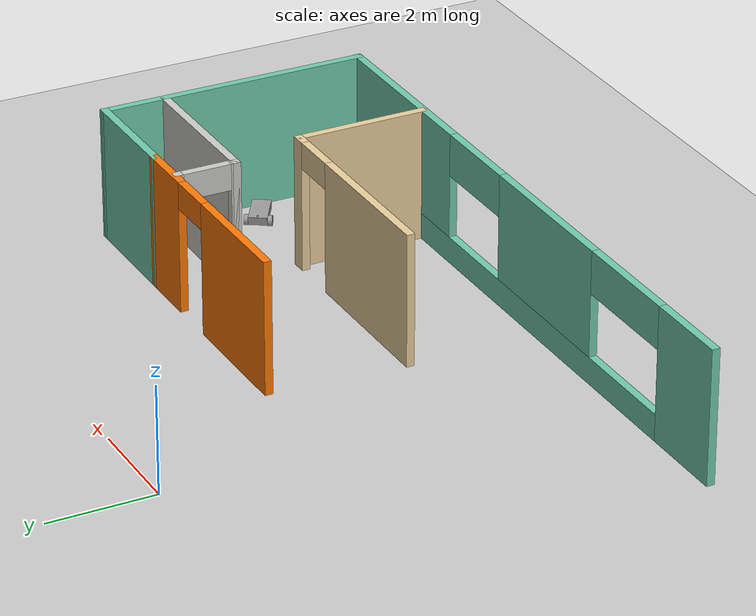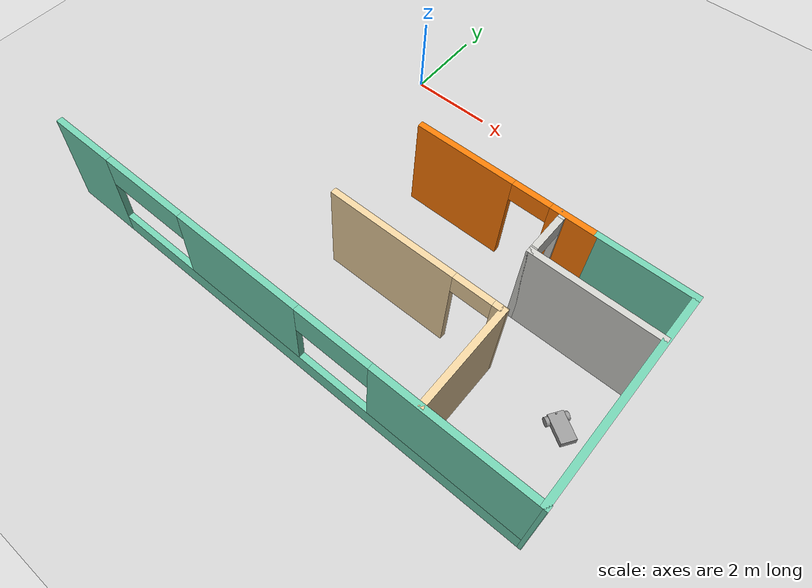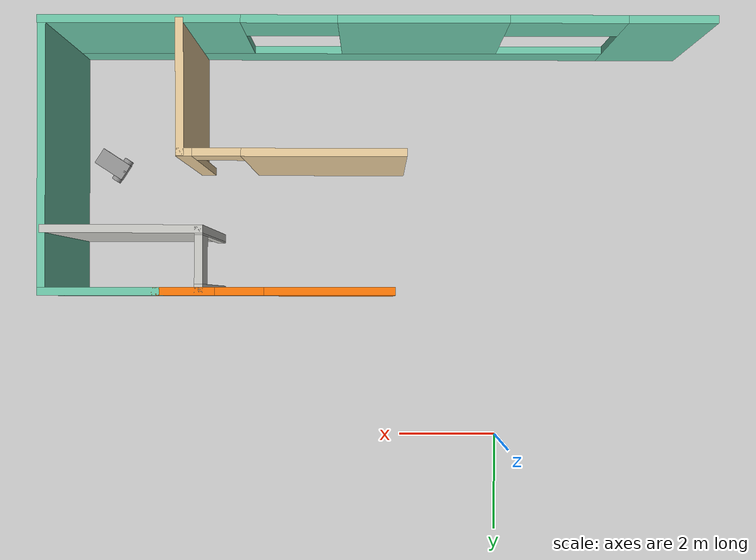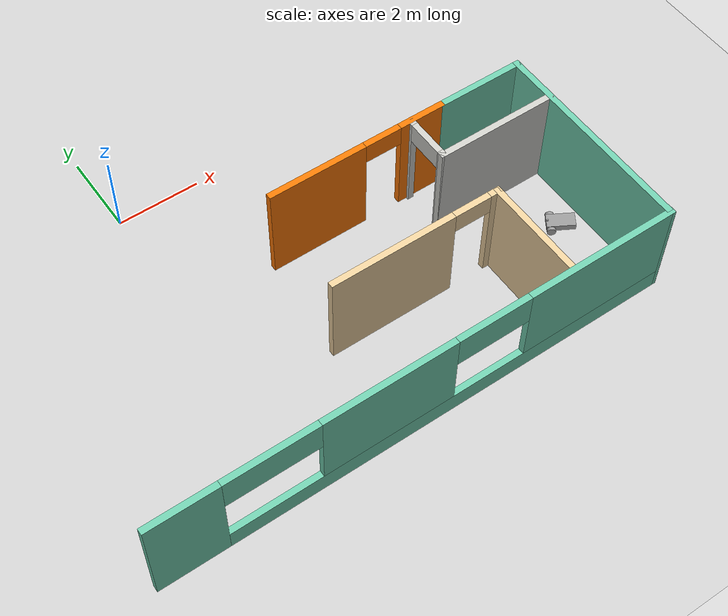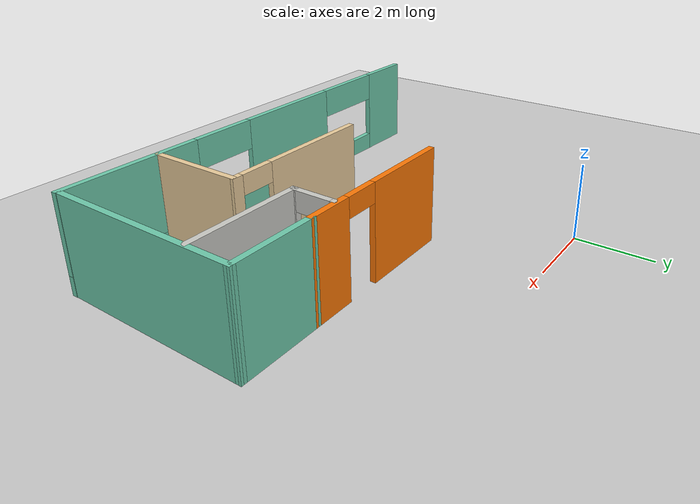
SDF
<sdf version="1.6">
 <world name="default">
  <model name="ground_plane">
   <static>1</static>
   <link name="link">
    <collision name="collision">
     <geometry><plane><normal>0 0 1</normal><size>100 100</size></plane></geometry>
     <surface><friction><ode><mu>100</mu><mu2>50</mu2></ode></friction></surface>
    </collision>
    <visual name="visual">
     <cast_shadows>0</cast_shadows>
     <geometry><plane><normal>0 0 1</normal><size>100 100</size></plane></geometry>
     <material>
      <script><uri>file://media/materials/scripts/gazebo.material</uri><name>Gazebo/Grey</name></script>
     </material>
    </visual>
   </link>
  </model>
  <model name="Building">
   <link name="Wall_10">
    <pose>6.19158 -2.73169 0 0 -0 3.14159</pose>
    <visual name="Wall_10_Visual">
     <pose>0 0 1.25 0 -0 0</pose>
     <geometry><box><size>2.25 0.15 2.5</size></box></geometry>
     <material>
      <script><uri>file://media/materials/scripts/gazebo.material</uri><name>Gazebo/Grey</name></script>
      <ambient>0.435294 0.796078 0.67451 1</ambient>
      <shader type="pixel"/>
      <diffuse>0.7 0.7 0.7 1</diffuse>
      <specular>0.01 0.01 0.01 1</specular>
      <emissive>0 0 0 1</emissive>
     </material>
     <meta><layer>0</layer></meta>
    </visual>
    <collision name="Wall_10_Collision">
     <pose>0 0 1.25 0 -0 0</pose>
     <geometry><box><size>2.25 0.15 2.5</size></box></geometry>
     <surface>
      <friction>
       <ode><mu>1</mu><mu2>1</mu2><fdir1>0 0 0</fdir1><slip1>0</slip1><slip2>0</slip2></ode>
       <torsional>
        <coefficient>1</coefficient>
        <patch_radius>0</patch_radius>
        <surface_radius>0</surface_radius>
        <use_patch_radius>1</use_patch_radius>
        <ode><slip>0</slip></ode>
       </torsional>
      </friction>
      <bounce><restitution_coefficient>0</restitution_coefficient><threshold>1e+06</threshold></bounce>
      <contact>
       <collide_without_contact>0</collide_without_contact>
       <collide_without_contact_bitmask>1</collide_without_contact_bitmask>
       <collide_bitmask>1</collide_bitmask>
       <ode>
        <soft_cfm>0</soft_cfm>
        <soft_erp>0.2</soft_erp>
        <kp>1e+13</kp>
        <kd>1</kd>
        <max_vel>0.01</max_vel>
        <min_depth>0</min_depth>
       </ode>
       <bullet>
        <split_impulse>1</split_impulse>
        <split_impulse_penetration_threshold>-0.01</split_impulse_penetration_threshold>
        <soft_cfm>0</soft_cfm>
        <soft_erp>0.2</soft_erp>
        <kp>1e+13</kp>
        <kd>1</kd>
       </bullet>
      </contact>
     </surface>
    </collision>
   </link>
   <link name="Wall_253">
    <pose>2.97544 -2.73481 0 0 -0 0.00144</pose>
    <visual name="Wall_253_Visual_0">
     <pose>-1.03152 0 1.25 0 -0 0</pose>
     <geometry><box><size>2.41923 0.15 2.5</size></box></geometry>
     <material>
      <script><uri>file://media/materials/scripts/gazebo.material</uri><name>Gazebo/Grey</name></script>
      <ambient>0.996078 0.47451 0.0196078 1</ambient>
      <shader type="pixel"/>
      <diffuse>0.7 0.7 0.7 1</diffuse>
      <specular>0.01 0.01 0.01 1</specular>
      <emissive>0 0 0 1</emissive>
     </material>
     <meta><layer>0</layer></meta>
    </visual>
    <visual name="Wall_253_Visual_1">
     <pose>1.65962 0 1.25 0 -0 0</pose>
     <geometry><box><size>1.16304 0.15 2.5</size></box></geometry>
     <material>
      <script><uri>file://media/materials/scripts/gazebo.material</uri><name>Gazebo/Grey</name></script>
      <ambient>0.996078 0.47451 0.0196078 1</ambient>
      <shader type="pixel"/>
      <diffuse>0.7 0.7 0.7 1</diffuse>
      <specular>0.01 0.01 0.01 1</specular>
      <emissive>0 0 0 1</emissive>
     </material>
     <meta><layer>0</layer></meta>
    </visual>
    <visual name="Wall_253_Visual_2">
     <pose>0.628096 0 2.25 0 -0 0</pose>
     <geometry><box><size>0.9 0.15 0.5</size></box></geometry>
     <material>
      <script><uri>file://media/materials/scripts/gazebo.material</uri><name>Gazebo/Grey</name></script>
      <ambient>0.996078 0.47451 0.0196078 1</ambient>
      <shader type="pixel"/>
      <diffuse>0.7 0.7 0.7 1</diffuse>
      <specular>0.01 0.01 0.01 1</specular>
      <emissive>0 0 0 1</emissive>
     </material>
     <meta><layer>0</layer></meta>
    </visual>
    <collision name="Wall_253_Collision_0">
     <pose>-1.03152 0 1.25 0 -0 0</pose>
     <geometry><box><size>2.41923 0.15 2.5</size></box></geometry>
     <surface>
      <friction>
       <ode><mu>1</mu><mu2>1</mu2><fdir1>0 0 0</fdir1><slip1>0</slip1><slip2>0</slip2></ode>
       <torsional>
        <coefficient>1</coefficient>
        <patch_radius>0</patch_radius>
        <surface_radius>0</surface_radius>
        <use_patch_radius>1</use_patch_radius>
        <ode><slip>0</slip></ode>
       </torsional>
      </friction>
      <bounce><restitution_coefficient>0</restitution_coefficient><threshold>1e+06</threshold></bounce>
      <contact>
       <collide_without_contact>0</collide_without_contact>
       <collide_without_contact_bitmask>1</collide_without_contact_bitmask>
       <collide_bitmask>1</collide_bitmask>
       <ode>
        <soft_cfm>0</soft_cfm>
        <soft_erp>0.2</soft_erp>
        <kp>1e+13</kp>
        <kd>1</kd>
        <max_vel>0.01</max_vel>
        <min_depth>0</min_depth>
       </ode>
       <bullet>
        <split_impulse>1</split_impulse>
        <split_impulse_penetration_threshold>-0.01</split_impulse_penetration_threshold>
        <soft_cfm>0</soft_cfm>
        <soft_erp>0.2</soft_erp>
        <kp>1e+13</kp>
        <kd>1</kd>
       </bullet>
      </contact>
     </surface>
    </collision>
    <collision name="Wall_253_Collision_1">
     <pose>1.65962 0 1.25 0 -0 0</pose>
     <geometry><box><size>1.16304 0.15 2.5</size></box></geometry>
     <surface>
      <friction>
       <ode><mu>1</mu><mu2>1</mu2><fdir1>0 0 0</fdir1><slip1>0</slip1><slip2>0</slip2></ode>
       <torsional>
        <coefficient>1</coefficient>
        <patch_radius>0</patch_radius>
        <surface_radius>0</surface_radius>
        <use_patch_radius>1</use_patch_radius>
        <ode><slip>0</slip></ode>
       </torsional>
      </friction>
      <bounce><restitution_coefficient>0</restitution_coefficient><threshold>1e+06</threshold></bounce>
      <contact>
       <collide_without_contact>0</collide_without_contact>
       <collide_without_contact_bitmask>1</collide_without_contact_bitmask>
       <collide_bitmask>1</collide_bitmask>
       <ode>
        <soft_cfm>0</soft_cfm>
        <soft_erp>0.2</soft_erp>
        <kp>1e+13</kp>
        <kd>1</kd>
        <max_vel>0.01</max_vel>
        <min_depth>0</min_depth>
       </ode>
       <bullet>
        <split_impulse>1</split_impulse>
        <split_impulse_penetration_threshold>-0.01</split_impulse_penetration_threshold>
        <soft_cfm>0</soft_cfm>
        <soft_erp>0.2</soft_erp>
        <kp>1e+13</kp>
        <kd>1</kd>
       </bullet>
      </contact>
     </surface>
    </collision>
    <collision name="Wall_253_Collision_2">
     <pose>0.628096 0 2.25 0 -0 0</pose>
     <geometry><box><size>0.9 0.15 0.5</size></box></geometry>
     <surface>
      <friction>
       <ode><mu>1</mu><mu2>1</mu2><fdir1>0 0 0</fdir1><slip1>0</slip1><slip2>0</slip2></ode>
       <torsional>
        <coefficient>1</coefficient>
        <patch_radius>0</patch_radius>
        <surface_radius>0</surface_radius>
        <use_patch_radius>1</use_patch_radius>
        <ode><slip>0</slip></ode>
       </torsional>
      </friction>
      <bounce><restitution_coefficient>0</restitution_coefficient><threshold>1e+06</threshold></bounce>
      <contact>
       <collide_without_contact>0</collide_without_contact>
       <collide_without_contact_bitmask>1</collide_without_contact_bitmask>
       <collide_bitmask>1</collide_bitmask>
       <ode>
        <soft_cfm>0</soft_cfm>
        <soft_erp>0.2</soft_erp>
        <kp>1e+13</kp>
        <kd>1</kd>
        <max_vel>0.01</max_vel>
        <min_depth>0</min_depth>
       </ode>
       <bullet>
        <split_impulse>1</split_impulse>
        <split_impulse_penetration_threshold>-0.01</split_impulse_penetration_threshold>
        <soft_cfm>0</soft_cfm>
        <soft_erp>0.2</soft_erp>
        <kp>1e+13</kp>
        <kd>1</kd>
       </bullet>
      </contact>
     </surface>
    </collision>
   </link>
   <link name="Wall_276">
    <pose>2.65197 -5.28598 0 0 -0 0</pose>
    <visual name="Wall_276_Visual_0">
     <pose>-0.59905 0 1.25 0 -0 0</pose>
     <geometry><box><size>3.0519 0.15 2.5</size></box></geometry>
     <material>
      <script><uri>file://media/materials/scripts/gazebo.material</uri><name>Gazebo/Grey</name></script>
      <ambient>0.921569 0.807843 0.615686 1</ambient>
      <shader type="pixel"/>
      <diffuse>0.7 0.7 0.7 1</diffuse>
      <specular>0.01 0.01 0.01 1</specular>
      <emissive>0 0 0 1</emissive>
     </material>
     <meta><layer>0</layer></meta>
    </visual>
    <visual name="Wall_276_Visual_1">
     <pose>1.97595 0 1.25 0 -0 0</pose>
     <geometry><box><size>0.298099 0.15 2.5</size></box></geometry>
     <material>
      <script><uri>file://media/materials/scripts/gazebo.material</uri><name>Gazebo/Grey</name></script>
      <ambient>0.921569 0.807843 0.615686 1</ambient>
      <shader type="pixel"/>
      <diffuse>0.7 0.7 0.7 1</diffuse>
      <specular>0.01 0.01 0.01 1</specular>
      <emissive>0 0 0 1</emissive>
     </material>
     <meta><layer>0</layer></meta>
    </visual>
    <visual name="Wall_276_Visual_2">
     <pose>1.3769 0 2.25 0 -0 0</pose>
     <geometry><box><size>0.9 0.15 0.5</size></box></geometry>
     <material>
      <script><uri>file://media/materials/scripts/gazebo.material</uri><name>Gazebo/Grey</name></script>
      <ambient>0.921569 0.807843 0.615686 1</ambient>
      <shader type="pixel"/>
      <diffuse>0.7 0.7 0.7 1</diffuse>
      <specular>0.01 0.01 0.01 1</specular>
      <emissive>0 0 0 1</emissive>
     </material>
     <meta><layer>0</layer></meta>
    </visual>
    <collision name="Wall_276_Collision_0">
     <pose>-0.59905 0 1.25 0 -0 0</pose>
     <geometry><box><size>3.0519 0.15 2.5</size></box></geometry>
     <surface>
      <friction>
       <ode><mu>1</mu><mu2>1</mu2><fdir1>0 0 0</fdir1><slip1>0</slip1><slip2>0</slip2></ode>
       <torsional>
        <coefficient>1</coefficient>
        <patch_radius>0</patch_radius>
        <surface_radius>0</surface_radius>
        <use_patch_radius>1</use_patch_radius>
        <ode><slip>0</slip></ode>
       </torsional>
      </friction>
      <bounce><restitution_coefficient>0</restitution_coefficient><threshold>1e+06</threshold></bounce>
      <contact>
       <collide_without_contact>0</collide_without_contact>
       <collide_without_contact_bitmask>1</collide_without_contact_bitmask>
       <collide_bitmask>1</collide_bitmask>
       <ode>
        <soft_cfm>0</soft_cfm>
        <soft_erp>0.2</soft_erp>
        <kp>1e+13</kp>
        <kd>1</kd>
        <max_vel>0.01</max_vel>
        <min_depth>0</min_depth>
       </ode>
       <bullet>
        <split_impulse>1</split_impulse>
        <split_impulse_penetration_threshold>-0.01</split_impulse_penetration_threshold>
        <soft_cfm>0</soft_cfm>
        <soft_erp>0.2</soft_erp>
        <kp>1e+13</kp>
        <kd>1</kd>
       </bullet>
      </contact>
     </surface>
    </collision>
    <collision name="Wall_276_Collision_1">
     <pose>1.97595 0 1.25 0 -0 0</pose>
     <geometry><box><size>0.298099 0.15 2.5</size></box></geometry>
     <surface>
      <friction>
       <ode><mu>1</mu><mu2>1</mu2><fdir1>0 0 0</fdir1><slip1>0</slip1><slip2>0</slip2></ode>
       <torsional>
        <coefficient>1</coefficient>
        <patch_radius>0</patch_radius>
        <surface_radius>0</surface_radius>
        <use_patch_radius>1</use_patch_radius>
        <ode><slip>0</slip></ode>
       </torsional>
      </friction>
      <bounce><restitution_coefficient>0</restitution_coefficient><threshold>1e+06</threshold></bounce>
      <contact>
       <collide_without_contact>0</collide_without_contact>
       <collide_without_contact_bitmask>1</collide_without_contact_bitmask>
       <collide_bitmask>1</collide_bitmask>
       <ode>
        <soft_cfm>0</soft_cfm>
        <soft_erp>0.2</soft_erp>
        <kp>1e+13</kp>
        <kd>1</kd>
        <max_vel>0.01</max_vel>
        <min_depth>0</min_depth>
       </ode>
       <bullet>
        <split_impulse>1</split_impulse>
        <split_impulse_penetration_threshold>-0.01</split_impulse_penetration_threshold>
        <soft_cfm>0</soft_cfm>
        <soft_erp>0.2</soft_erp>
        <kp>1e+13</kp>
        <kd>1</kd>
       </bullet>
      </contact>
     </surface>
    </collision>
    <collision name="Wall_276_Collision_2">
     <pose>1.3769 0 2.25 0 -0 0</pose>
     <geometry><box><size>0.9 0.15 0.5</size></box></geometry>
     <surface>
      <friction>
       <ode><mu>1</mu><mu2>1</mu2><fdir1>0 0 0</fdir1><slip1>0</slip1><slip2>0</slip2></ode>
       <torsional>
        <coefficient>1</coefficient>
        <patch_radius>0</patch_radius>
        <surface_radius>0</surface_radius>
        <use_patch_radius>1</use_patch_radius>
        <ode><slip>0</slip></ode>
       </torsional>
      </friction>
      <bounce><restitution_coefficient>0</restitution_coefficient><threshold>1e+06</threshold></bounce>
      <contact>
       <collide_without_contact>0</collide_without_contact>
       <collide_without_contact_bitmask>1</collide_without_contact_bitmask>
       <collide_bitmask>1</collide_bitmask>
       <ode>
        <soft_cfm>0</soft_cfm>
        <soft_erp>0.2</soft_erp>
        <kp>1e+13</kp>
        <kd>1</kd>
        <max_vel>0.01</max_vel>
        <min_depth>0</min_depth>
       </ode>
       <bullet>
        <split_impulse>1</split_impulse>
        <split_impulse_penetration_threshold>-0.01</split_impulse_penetration_threshold>
        <soft_cfm>0</soft_cfm>
        <soft_erp>0.2</soft_erp>
        <kp>1e+13</kp>
        <kd>1</kd>
       </bullet>
      </contact>
     </surface>
    </collision>
   </link>
   <link name="Wall_277">
    <pose>4.70728 -6.49036 0 0 0 -1.56635</pose>
    <visual name="Wall_277_Visual">
     <pose>0 0 1.25 0 -0 0</pose>
     <geometry><box><size>2.53755 0.15 2.5</size></box></geometry>
     <material>
      <script><uri>file://media/materials/scripts/gazebo.material</uri><name>Gazebo/Grey</name></script>
      <ambient>0.921569 0.807843 0.615686 1</ambient>
      <shader type="pixel"/>
      <diffuse>0.7 0.7 0.7 1</diffuse>
      <specular>0.01 0.01 0.01 1</specular>
      <emissive>0 0 0 1</emissive>
     </material>
     <meta><layer>0</layer></meta>
    </visual>
    <collision name="Wall_277_Collision">
     <pose>0 0 1.25 0 -0 0</pose>
     <geometry><box><size>2.53755 0.15 2.5</size></box></geometry>
     <surface>
      <friction>
       <ode><mu>1</mu><mu2>1</mu2><fdir1>0 0 0</fdir1><slip1>0</slip1><slip2>0</slip2></ode>
       <torsional>
        <coefficient>1</coefficient>
        <patch_radius>0</patch_radius>
        <surface_radius>0</surface_radius>
        <use_patch_radius>1</use_patch_radius>
        <ode><slip>0</slip></ode>
       </torsional>
      </friction>
      <bounce><restitution_coefficient>0</restitution_coefficient><threshold>1e+06</threshold></bounce>
      <contact>
       <collide_without_contact>0</collide_without_contact>
       <collide_without_contact_bitmask>1</collide_without_contact_bitmask>
       <collide_bitmask>1</collide_bitmask>
       <ode>
        <soft_cfm>0</soft_cfm>
        <soft_erp>0.2</soft_erp>
        <kp>1e+13</kp>
        <kd>1</kd>
        <max_vel>0.01</max_vel>
        <min_depth>0</min_depth>
       </ode>
       <bullet>
        <split_impulse>1</split_impulse>
        <split_impulse_penetration_threshold>-0.01</split_impulse_penetration_threshold>
        <soft_cfm>0</soft_cfm>
        <soft_erp>0.2</soft_erp>
        <kp>1e+13</kp>
        <kd>1</kd>
       </bullet>
      </contact>
     </surface>
    </collision>
   </link>
   <link name="Wall_280">
    <pose>5.77925 -3.8816 0 0 -0 0</pose>
    <visual name="Wall_280_Visual">
     <pose>0 0 1.25 0 -0 0</pose>
     <geometry><box><size>3 0.15 2.5</size></box></geometry>
     <material>
      <script><uri>file://media/materials/scripts/gazebo.material</uri><name>Gazebo/CeilingTiled</name></script>
      <ambient>0.921569 0.807843 0.615686 1</ambient>
      <shader type="pixel"/>
      <diffuse>1 1 1 1</diffuse>
      <specular>0 0 0 1</specular>
      <emissive>0 0 0 1</emissive>
     </material>
     <meta><layer>0</layer></meta>
    </visual>
    <collision name="Wall_280_Collision">
     <pose>0 0 1.25 0 -0 0</pose>
     <geometry><box><size>3 0.15 2.5</size></box></geometry>
     <surface>
      <friction>
       <ode><mu>1</mu><mu2>1</mu2><fdir1>0 0 0</fdir1><slip1>0</slip1><slip2>0</slip2></ode>
       <torsional>
        <coefficient>1</coefficient>
        <patch_radius>0</patch_radius>
        <surface_radius>0</surface_radius>
        <use_patch_radius>1</use_patch_radius>
        <ode><slip>0</slip></ode>
       </torsional>
      </friction>
      <bounce><restitution_coefficient>0</restitution_coefficient><threshold>1e+06</threshold></bounce>
      <contact>
       <collide_without_contact>0</collide_without_contact>
       <collide_without_contact_bitmask>1</collide_without_contact_bitmask>
       <collide_bitmask>1</collide_bitmask>
       <ode>
        <soft_cfm>0</soft_cfm>
        <soft_erp>0.2</soft_erp>
        <kp>1e+13</kp>
        <kd>1</kd>
        <max_vel>0.01</max_vel>
        <min_depth>0</min_depth>
       </ode>
       <bullet>
        <split_impulse>1</split_impulse>
        <split_impulse_penetration_threshold>-0.01</split_impulse_penetration_threshold>
        <soft_cfm>0</soft_cfm>
        <soft_erp>0.2</soft_erp>
        <kp>1e+13</kp>
        <kd>1</kd>
       </bullet>
      </contact>
     </surface>
    </collision>
   </link>
   <link name="Wall_343">
    <pose>4.35425 -3.3316 0 0 -0 1.5708</pose>
    <visual name="Wall_343_Visual_0">
     <pose>-0.532668 0 1.25 0 -0 0</pose>
     <geometry><box><size>0.184664 0.15 2.5</size></box></geometry>
     <material>
      <script><uri>file://media/materials/scripts/gazebo.material</uri><name>Gazebo/CeilingTiled</name></script>
      <ambient>0.921569 0.807843 0.615686 1</ambient>
      <shader type="pixel"/>
      <diffuse>1 1 1 1</diffuse>
      <specular>0 0 0 1</specular>
      <emissive>0 0 0 1</emissive>
     </material>
     <meta><layer>0</layer></meta>
    </visual>
    <visual name="Wall_343_Visual_1">
     <pose>0.542332 0 1.25 0 -0 0</pose>
     <geometry><box><size>0.165336 0.15 2.5</size></box></geometry>
     <material>
      <script><uri>file://media/materials/scripts/gazebo.material</uri><name>Gazebo/CeilingTiled</name></script>
      <ambient>0.921569 0.807843 0.615686 1</ambient>
      <shader type="pixel"/>
      <diffuse>1 1 1 1</diffuse>
      <specular>0 0 0 1</specular>
      <emissive>0 0 0 1</emissive>
     </material>
     <meta><layer>0</layer></meta>
    </visual>
    <visual name="Wall_343_Visual_2">
     <pose>0.009664 0 2.25 0 -0 0</pose>
     <geometry><box><size>0.9 0.15 0.5</size></box></geometry>
     <material>
      <script><uri>file://media/materials/scripts/gazebo.material</uri><name>Gazebo/CeilingTiled</name></script>
      <ambient>0.921569 0.807843 0.615686 1</ambient>
      <shader type="pixel"/>
      <diffuse>1 1 1 1</diffuse>
      <specular>0 0 0 1</specular>
      <emissive>0 0 0 1</emissive>
     </material>
     <meta><layer>0</layer></meta>
    </visual>
    <collision name="Wall_343_Collision_0">
     <pose>-0.532668 0 1.25 0 -0 0</pose>
     <geometry><box><size>0.184664 0.15 2.5</size></box></geometry>
     <surface>
      <friction>
       <ode><mu>1</mu><mu2>1</mu2><fdir1>0 0 0</fdir1><slip1>0</slip1><slip2>0</slip2></ode>
       <torsional>
        <coefficient>1</coefficient>
        <patch_radius>0</patch_radius>
        <surface_radius>0</surface_radius>
        <use_patch_radius>1</use_patch_radius>
        <ode><slip>0</slip></ode>
       </torsional>
      </friction>
      <bounce><restitution_coefficient>0</restitution_coefficient><threshold>1e+06</threshold></bounce>
      <contact>
       <collide_without_contact>0</collide_without_contact>
       <collide_without_contact_bitmask>1</collide_without_contact_bitmask>
       <collide_bitmask>1</collide_bitmask>
       <ode>
        <soft_cfm>0</soft_cfm>
        <soft_erp>0.2</soft_erp>
        <kp>1e+13</kp>
        <kd>1</kd>
        <max_vel>0.01</max_vel>
        <min_depth>0</min_depth>
       </ode>
       <bullet>
        <split_impulse>1</split_impulse>
        <split_impulse_penetration_threshold>-0.01</split_impulse_penetration_threshold>
        <soft_cfm>0</soft_cfm>
        <soft_erp>0.2</soft_erp>
        <kp>1e+13</kp>
        <kd>1</kd>
       </bullet>
      </contact>
     </surface>
    </collision>
    <collision name="Wall_343_Collision_1">
     <pose>0.542332 0 1.25 0 -0 0</pose>
     <geometry><box><size>0.165336 0.15 2.5</size></box></geometry>
     <surface>
      <friction>
       <ode><mu>1</mu><mu2>1</mu2><fdir1>0 0 0</fdir1><slip1>0</slip1><slip2>0</slip2></ode>
       <torsional>
        <coefficient>1</coefficient>
        <patch_radius>0</patch_radius>
        <surface_radius>0</surface_radius>
        <use_patch_radius>1</use_patch_radius>
        <ode><slip>0</slip></ode>
       </torsional>
      </friction>
      <bounce><restitution_coefficient>0</restitution_coefficient><threshold>1e+06</threshold></bounce>
      <contact>
       <collide_without_contact>0</collide_without_contact>
       <collide_without_contact_bitmask>1</collide_without_contact_bitmask>
       <collide_bitmask>1</collide_bitmask>
       <ode>
        <soft_cfm>0</soft_cfm>
        <soft_erp>0.2</soft_erp>
        <kp>1e+13</kp>
        <kd>1</kd>
        <max_vel>0.01</max_vel>
        <min_depth>0</min_depth>
       </ode>
       <bullet>
        <split_impulse>1</split_impulse>
        <split_impulse_penetration_threshold>-0.01</split_impulse_penetration_threshold>
        <soft_cfm>0</soft_cfm>
        <soft_erp>0.2</soft_erp>
        <kp>1e+13</kp>
        <kd>1</kd>
       </bullet>
      </contact>
     </surface>
    </collision>
    <collision name="Wall_343_Collision_2">
     <pose>0.009664 0 2.25 0 -0 0</pose>
     <geometry><box><size>0.9 0.15 0.5</size></box></geometry>
     <surface>
      <friction>
       <ode><mu>1</mu><mu2>1</mu2><fdir1>0 0 0</fdir1><slip1>0</slip1><slip2>0</slip2></ode>
       <torsional>
        <coefficient>1</coefficient>
        <patch_radius>0</patch_radius>
        <surface_radius>0</surface_radius>
        <use_patch_radius>1</use_patch_radius>
        <ode><slip>0</slip></ode>
       </torsional>
      </friction>
      <bounce><restitution_coefficient>0</restitution_coefficient><threshold>1e+06</threshold></bounce>
      <contact>
       <collide_without_contact>0</collide_without_contact>
       <collide_without_contact_bitmask>1</collide_without_contact_bitmask>
       <collide_bitmask>1</collide_bitmask>
       <ode>
        <soft_cfm>0</soft_cfm>
        <soft_erp>0.2</soft_erp>
        <kp>1e+13</kp>
        <kd>1</kd>
        <max_vel>0.01</max_vel>
        <min_depth>0</min_depth>
       </ode>
       <bullet>
        <split_impulse>1</split_impulse>
        <split_impulse_penetration_threshold>-0.01</split_impulse_penetration_threshold>
        <soft_cfm>0</soft_cfm>
        <soft_erp>0.2</soft_erp>
        <kp>1e+13</kp>
        <kd>1</kd>
       </bullet>
      </contact>
     </surface>
    </collision>
   </link>
   <link name="Wall_8">
    <pose>1.06991 -7.73007 0 0 -0 0</pose>
    <visual name="Wall_8_Visual_0">
     <pose>-5.42529 0 1.25 0 -0 0</pose>
     <geometry><box><size>1.64942 0.15 2.5</size></box></geometry>
     <material>
      <script><uri>file://media/materials/scripts/gazebo.material</uri><name>Gazebo/Grey</name></script>
      <ambient>0.435294 0.796078 0.67451 1</ambient>
      <shader type="pixel"/>
      <diffuse>0.7 0.7 0.7 1</diffuse>
      <specular>0.01 0.01 0.01 1</specular>
      <emissive>0 0 0 1</emissive>
     </material>
     <meta><layer>0</layer></meta>
    </visual>
    <visual name="Wall_8_Visual_1">
     <pose>0.824709 0 0.25 0 -0 0</pose>
     <geometry><box><size>10.8506 0.15 0.5</size></box></geometry>
     <material>
      <script><uri>file://media/materials/scripts/gazebo.material</uri><name>Gazebo/Grey</name></script>
      <ambient>0.435294 0.796078 0.67451 1</ambient>
      <shader type="pixel"/>
      <diffuse>0.7 0.7 0.7 1</diffuse>
      <specular>0.01 0.01 0.01 1</specular>
      <emissive>0 0 0 1</emissive>
     </material>
     <meta><layer>0</layer></meta>
    </visual>
    <visual name="Wall_8_Visual_2">
     <pose>-0.844657 0 1.5 0 -0 0</pose>
     <geometry><box><size>3.16585 0.15 2</size></box></geometry>
     <material>
      <script><uri>file://media/materials/scripts/gazebo.material</uri><name>Gazebo/Grey</name></script>
      <ambient>0.435294 0.796078 0.67451 1</ambient>
      <shader type="pixel"/>
      <diffuse>0.7 0.7 0.7 1</diffuse>
      <specular>0.01 0.01 0.01 1</specular>
      <emissive>0 0 0 1</emissive>
     </material>
     <meta><layer>0</layer></meta>
    </visual>
    <visual name="Wall_8_Visual_3">
     <pose>4.38652 0 1.5 0 -0 0</pose>
     <geometry><box><size>3.72696 0.15 2</size></box></geometry>
     <material>
      <script><uri>file://media/materials/scripts/gazebo.material</uri><name>Gazebo/Grey</name></script>
      <ambient>0.435294 0.796078 0.67451 1</ambient>
      <shader type="pixel"/>
      <diffuse>0.7 0.7 0.7 1</diffuse>
      <specular>0.01 0.01 0.01 1</specular>
      <emissive>0 0 0 1</emissive>
     </material>
     <meta><layer>0</layer></meta>
    </visual>
    <visual name="Wall_8_Visual_4">
     <pose>-3.51408 0 2.1 0 -0 0</pose>
     <geometry><box><size>2.173 0.15 0.8</size></box></geometry>
     <material>
      <script><uri>file://media/materials/scripts/gazebo.material</uri><name>Gazebo/Grey</name></script>
      <ambient>0.435294 0.796078 0.67451 1</ambient>
      <shader type="pixel"/>
      <diffuse>0.7 0.7 0.7 1</diffuse>
      <specular>0.01 0.01 0.01 1</specular>
      <emissive>0 0 0 1</emissive>
     </material>
     <meta><layer>0</layer></meta>
    </visual>
    <visual name="Wall_8_Visual_5">
     <pose>1.63065 0 2.1 0 -0 0</pose>
     <geometry><box><size>1.78477 0.15 0.8</size></box></geometry>
     <material>
      <script><uri>file://media/materials/scripts/gazebo.material</uri><name>Gazebo/Grey</name></script>
      <ambient>0.435294 0.796078 0.67451 1</ambient>
      <shader type="pixel"/>
      <diffuse>0.7 0.7 0.7 1</diffuse>
      <specular>0.01 0.01 0.01 1</specular>
      <emissive>0 0 0 1</emissive>
     </material>
     <meta><layer>0</layer></meta>
    </visual>
    <collision name="Wall_8_Collision_0">
     <pose>-5.42529 0 1.25 0 -0 0</pose>
     <geometry><box><size>1.64942 0.15 2.5</size></box></geometry>
     <surface>
      <friction>
       <ode><mu>1</mu><mu2>1</mu2><fdir1>0 0 0</fdir1><slip1>0</slip1><slip2>0</slip2></ode>
       <torsional>
        <coefficient>1</coefficient>
        <patch_radius>0</patch_radius>
        <surface_radius>0</surface_radius>
        <use_patch_radius>1</use_patch_radius>
        <ode><slip>0</slip></ode>
       </torsional>
      </friction>
      <bounce><restitution_coefficient>0</restitution_coefficient><threshold>1e+06</threshold></bounce>
      <contact>
       <collide_without_contact>0</collide_without_contact>
       <collide_without_contact_bitmask>1</collide_without_contact_bitmask>
       <collide_bitmask>1</collide_bitmask>
       <ode>
        <soft_cfm>0</soft_cfm>
        <soft_erp>0.2</soft_erp>
        <kp>1e+13</kp>
        <kd>1</kd>
        <max_vel>0.01</max_vel>
        <min_depth>0</min_depth>
       </ode>
       <bullet>
        <split_impulse>1</split_impulse>
        <split_impulse_penetration_threshold>-0.01</split_impulse_penetration_threshold>
        <soft_cfm>0</soft_cfm>
        <soft_erp>0.2</soft_erp>
        <kp>1e+13</kp>
        <kd>1</kd>
       </bullet>
      </contact>
     </surface>
    </collision>
    <collision name="Wall_8_Collision_1">
     <pose>0.824709 0 0.25 0 -0 0</pose>
     <geometry><box><size>10.8506 0.15 0.5</size></box></geometry>
     <surface>
      <friction>
       <ode><mu>1</mu><mu2>1</mu2><fdir1>0 0 0</fdir1><slip1>0</slip1><slip2>0</slip2></ode>
       <torsional>
        <coefficient>1</coefficient>
        <patch_radius>0</patch_radius>
        <surface_radius>0</surface_radius>
        <use_patch_radius>1</use_patch_radius>
        <ode><slip>0</slip></ode>
       </torsional>
      </friction>
      <bounce><restitution_coefficient>0</restitution_coefficient><threshold>1e+06</threshold></bounce>
      <contact>
       <collide_without_contact>0</collide_without_contact>
       <collide_without_contact_bitmask>1</collide_without_contact_bitmask>
       <collide_bitmask>1</collide_bitmask>
       <ode>
        <soft_cfm>0</soft_cfm>
        <soft_erp>0.2</soft_erp>
        <kp>1e+13</kp>
        <kd>1</kd>
        <max_vel>0.01</max_vel>
        <min_depth>0</min_depth>
       </ode>
       <bullet>
        <split_impulse>1</split_impulse>
        <split_impulse_penetration_threshold>-0.01</split_impulse_penetration_threshold>
        <soft_cfm>0</soft_cfm>
        <soft_erp>0.2</soft_erp>
        <kp>1e+13</kp>
        <kd>1</kd>
       </bullet>
      </contact>
     </surface>
    </collision>
    <collision name="Wall_8_Collision_2">
     <pose>-0.844657 0 1.5 0 -0 0</pose>
     <geometry><box><size>3.16585 0.15 2</size></box></geometry>
     <surface>
      <friction>
       <ode><mu>1</mu><mu2>1</mu2><fdir1>0 0 0</fdir1><slip1>0</slip1><slip2>0</slip2></ode>
       <torsional>
        <coefficient>1</coefficient>
        <patch_radius>0</patch_radius>
        <surface_radius>0</surface_radius>
        <use_patch_radius>1</use_patch_radius>
        <ode><slip>0</slip></ode>
       </torsional>
      </friction>
      <bounce><restitution_coefficient>0</restitution_coefficient><threshold>1e+06</threshold></bounce>
      <contact>
       <collide_without_contact>0</collide_without_contact>
       <collide_without_contact_bitmask>1</collide_without_contact_bitmask>
       <collide_bitmask>1</collide_bitmask>
       <ode>
        <soft_cfm>0</soft_cfm>
        <soft_erp>0.2</soft_erp>
        <kp>1e+13</kp>
        <kd>1</kd>
        <max_vel>0.01</max_vel>
        <min_depth>0</min_depth>
       </ode>
       <bullet>
        <split_impulse>1</split_impulse>
        <split_impulse_penetration_threshold>-0.01</split_impulse_penetration_threshold>
        <soft_cfm>0</soft_cfm>
        <soft_erp>0.2</soft_erp>
        <kp>1e+13</kp>
        <kd>1</kd>
       </bullet>
      </contact>
     </surface>
    </collision>
    <collision name="Wall_8_Collision_4">
     <pose>-3.51408 0 2.1 0 -0 0</pose>
     <geometry><box><size>2.173 0.15 0.8</size></box></geometry>
     <surface>
      <friction>
       <ode><mu>1</mu><mu2>1</mu2><fdir1>0 0 0</fdir1><slip1>0</slip1><slip2>0</slip2></ode>
       <torsional>
        <coefficient>1</coefficient>
        <patch_radius>0</patch_radius>
        <surface_radius>0</surface_radius>
        <use_patch_radius>1</use_patch_radius>
        <ode><slip>0</slip></ode>
       </torsional>
      </friction>
      <bounce><restitution_coefficient>0</restitution_coefficient><threshold>1e+06</threshold></bounce>
      <contact>
       <collide_without_contact>0</collide_without_contact>
       <collide_without_contact_bitmask>1</collide_without_contact_bitmask>
       <collide_bitmask>1</collide_bitmask>
       <ode>
        <soft_cfm>0</soft_cfm>
        <soft_erp>0.2</soft_erp>
        <kp>1e+13</kp>
        <kd>1</kd>
        <max_vel>0.01</max_vel>
        <min_depth>0</min_depth>
       </ode>
       <bullet>
        <split_impulse>1</split_impulse>
        <split_impulse_penetration_threshold>-0.01</split_impulse_penetration_threshold>
        <soft_cfm>0</soft_cfm>
        <soft_erp>0.2</soft_erp>
        <kp>1e+13</kp>
        <kd>1</kd>
       </bullet>
      </contact>
     </surface>
    </collision>
    <collision name="Wall_8_Collision_3">
     <pose>4.38652 0 1.5 0 -0 0</pose>
     <geometry><box><size>3.72696 0.15 2</size></box></geometry>
     <surface>
      <friction>
       <ode><mu>1</mu><mu2>1</mu2><fdir1>0 0 0</fdir1><slip1>0</slip1><slip2>0</slip2></ode>
       <torsional>
        <coefficient>1</coefficient>
        <patch_radius>0</patch_radius>
        <surface_radius>0</surface_radius>
        <use_patch_radius>1</use_patch_radius>
        <ode><slip>0</slip></ode>
       </torsional>
      </friction>
      <bounce><restitution_coefficient>0</restitution_coefficient><threshold>1e+06</threshold></bounce>
      <contact>
       <collide_without_contact>0</collide_without_contact>
       <collide_without_contact_bitmask>1</collide_without_contact_bitmask>
       <collide_bitmask>1</collide_bitmask>
       <ode>
        <soft_cfm>0</soft_cfm>
        <soft_erp>0.2</soft_erp>
        <kp>1e+13</kp>
        <kd>1</kd>
        <max_vel>0.01</max_vel>
        <min_depth>0</min_depth>
       </ode>
       <bullet>
        <split_impulse>1</split_impulse>
        <split_impulse_penetration_threshold>-0.01</split_impulse_penetration_threshold>
        <soft_cfm>0</soft_cfm>
        <soft_erp>0.2</soft_erp>
        <kp>1e+13</kp>
        <kd>1</kd>
       </bullet>
      </contact>
     </surface>
    </collision>
    <collision name="Wall_8_Collision_5">
     <pose>1.63065 0 2.1 0 -0 0</pose>
     <geometry><box><size>1.78477 0.15 0.8</size></box></geometry>
     <surface>
      <friction>
       <ode><mu>1</mu><mu2>1</mu2><fdir1>0 0 0</fdir1><slip1>0</slip1><slip2>0</slip2></ode>
       <torsional>
        <coefficient>1</coefficient>
        <patch_radius>0</patch_radius>
        <surface_radius>0</surface_radius>
        <use_patch_radius>1</use_patch_radius>
        <ode><slip>0</slip></ode>
       </torsional>
      </friction>
      <bounce><restitution_coefficient>0</restitution_coefficient><threshold>1e+06</threshold></bounce>
      <contact>
       <collide_without_contact>0</collide_without_contact>
       <collide_without_contact_bitmask>1</collide_without_contact_bitmask>
       <collide_bitmask>1</collide_bitmask>
       <ode>
        <soft_cfm>0</soft_cfm>
        <soft_erp>0.2</soft_erp>
        <kp>1e+13</kp>
        <kd>1</kd>
        <max_vel>0.01</max_vel>
        <min_depth>0</min_depth>
       </ode>
       <bullet>
        <split_impulse>1</split_impulse>
        <split_impulse_penetration_threshold>-0.01</split_impulse_penetration_threshold>
        <soft_cfm>0</soft_cfm>
        <soft_erp>0.2</soft_erp>
        <kp>1e+13</kp>
        <kd>1</kd>
       </bullet>
      </contact>
     </surface>
    </collision>
   </link>
   <link name="Wall_9">
    <pose>7.23793 -5.23088 0 0 -0 1.56934</pose>
    <visual name="Wall_9_Visual">
     <pose>0 0 1.25 0 -0 0</pose>
     <geometry><box><size>5.14841 0.15 2.5</size></box></geometry>
     <material>
      <script><uri>file://media/materials/scripts/gazebo.material</uri><name>Gazebo/Grey</name></script>
      <ambient>0.435294 0.796078 0.67451 1</ambient>
      <shader type="pixel"/>
      <diffuse>0.7 0.7 0.7 1</diffuse>
      <specular>0.01 0.01 0.01 1</specular>
      <emissive>0 0 0 1</emissive>
     </material>
     <meta><layer>0</layer></meta>
    </visual>
    <collision name="Wall_9_Collision">
     <pose>0 0 1.25 0 -0 0</pose>
     <geometry><box><size>5.14841 0.15 2.5</size></box></geometry>
     <surface>
      <friction>
       <ode><mu>1</mu><mu2>1</mu2><fdir1>0 0 0</fdir1><slip1>0</slip1><slip2>0</slip2></ode>
       <torsional>
        <coefficient>1</coefficient>
        <patch_radius>0</patch_radius>
        <surface_radius>0</surface_radius>
        <use_patch_radius>1</use_patch_radius>
        <ode><slip>0</slip></ode>
       </torsional>
      </friction>
      <bounce><restitution_coefficient>0</restitution_coefficient><threshold>1e+06</threshold></bounce>
      <contact>
       <collide_without_contact>0</collide_without_contact>
       <collide_without_contact_bitmask>1</collide_without_contact_bitmask>
       <collide_bitmask>1</collide_bitmask>
       <ode>
        <soft_cfm>0</soft_cfm>
        <soft_erp>0.2</soft_erp>
        <kp>1e+13</kp>
        <kd>1</kd>
        <max_vel>0.01</max_vel>
        <min_depth>0</min_depth>
       </ode>
       <bullet>
        <split_impulse>1</split_impulse>
        <split_impulse_penetration_threshold>-0.01</split_impulse_penetration_threshold>
        <soft_cfm>0</soft_cfm>
        <soft_erp>0.2</soft_erp>
        <kp>1e+13</kp>
        <kd>1</kd>
       </bullet>
      </contact>
     </surface>
    </collision>
   </link>
   <static>1</static>
   <pose>1.39929 -0.252215 0 0 -0 0</pose>
  </model>
  <model name="VehicleRobot_1">
   <link name="link_10_clone">
    <pose>0.278989 0.302807 0.099972 1.5707 -0 0</pose>
    <inertial>
     <mass>0.5</mass>
     <inertia><ixx>0.145833</ixx><ixy>0</ixy><ixz>0</ixz><iyy>0.145833</iyy><iyz>0</iyz><izz>0.125</izz></inertia>
    </inertial>
    <visual name="visual">
     <geometry><cylinder><radius>0.1</radius><length>0.08</length></cylinder></geometry>
     <material>
      <lighting>1</lighting>
      <script><uri>file://media/materials/scripts/gazebo.material</uri><name>Gazebo/Grey</name></script>
      <shader type="pixel"><normal_map>__default__</normal_map></shader>
      <ambient>0.3 0.3 0.3 1</ambient>
      <diffuse>0.7 0.7 0.7 1</diffuse>
      <specular>0.01 0.01 0.01 1</specular>
      <emissive>0 0 0 1</emissive>
     </material>
    </visual>
    <collision name="collision">
     <geometry><cylinder><radius>0.1</radius><length>0.08</length></cylinder></geometry>
     <surface>
      <friction>
       <ode><mu>1</mu><mu2>1</mu2><fdir1>0 0 0</fdir1><slip1>0</slip1><slip2>0</slip2></ode>
       <torsional>
        <coefficient>1</coefficient>
        <patch_radius>0</patch_radius>
        <surface_radius>0</surface_radius>
        <use_patch_radius>1</use_patch_radius>
        <ode><slip>0</slip></ode>
       </torsional>
      </friction>
      <bounce><restitution_coefficient>0</restitution_coefficient><threshold>1e+06</threshold></bounce>
      <contact>
       <collide_without_contact>0</collide_without_contact>
       <collide_without_contact_bitmask>1</collide_without_contact_bitmask>
       <collide_bitmask>1</collide_bitmask>
       <ode>
        <soft_cfm>0</soft_cfm>
        <soft_erp>0.2</soft_erp>
        <kp>1e+13</kp>
        <kd>1</kd>
        <max_vel>0.01</max_vel>
        <min_depth>0</min_depth>
       </ode>
       <bullet>
        <split_impulse>1</split_impulse>
        <split_impulse_penetration_threshold>-0.01</split_impulse_penetration_threshold>
        <soft_cfm>0</soft_cfm>
        <soft_erp>0.2</soft_erp>
        <kp>1e+13</kp>
        <kd>1</kd>
       </bullet>
      </contact>
     </surface>
    </collision>
   </link>
   <link name="link_10_clone_clone">
    <pose>0.278989 -0.128364 0.100018 1.5707 -0 0</pose>
    <inertial>
     <mass>0.5</mass>
     <inertia><ixx>0.145833</ixx><ixy>0</ixy><ixz>0</ixz><iyy>0.145833</iyy><iyz>0</iyz><izz>0.125</izz></inertia>
    </inertial>
    <visual name="visual">
     <geometry><cylinder><radius>0.1</radius><length>0.08</length></cylinder></geometry>
     <material>
      <lighting>1</lighting>
      <script><uri>file://media/materials/scripts/gazebo.material</uri><name>Gazebo/Grey</name></script>
      <shader type="pixel"><normal_map>__default__</normal_map></shader>
      <ambient>0.3 0.3 0.3 1</ambient>
      <diffuse>0.7 0.7 0.7 1</diffuse>
      <specular>0.01 0.01 0.01 1</specular>
      <emissive>0 0 0 1</emissive>
     </material>
    </visual>
    <collision name="collision">
     <geometry><cylinder><radius>0.1</radius><length>0.08</length></cylinder></geometry>
     <surface>
      <friction>
       <ode><mu>1</mu><mu2>1</mu2><fdir1>0 0 0</fdir1><slip1>0</slip1><slip2>0</slip2></ode>
       <torsional>
        <coefficient>1</coefficient>
        <patch_radius>0</patch_radius>
        <surface_radius>0</surface_radius>
        <use_patch_radius>1</use_patch_radius>
        <ode><slip>0</slip></ode>
       </torsional>
      </friction>
      <bounce><restitution_coefficient>0</restitution_coefficient><threshold>1e+06</threshold></bounce>
      <contact>
       <collide_without_contact>0</collide_without_contact>
       <collide_without_contact_bitmask>1</collide_without_contact_bitmask>
       <collide_bitmask>1</collide_bitmask>
       <ode>
        <soft_cfm>0</soft_cfm>
        <soft_erp>0.2</soft_erp>
        <kp>1e+13</kp>
        <kd>1</kd>
        <max_vel>0.01</max_vel>
        <min_depth>0</min_depth>
       </ode>
       <bullet>
        <split_impulse>1</split_impulse>
        <split_impulse_penetration_threshold>-0.01</split_impulse_penetration_threshold>
        <soft_cfm>0</soft_cfm>
        <soft_erp>0.2</soft_erp>
        <kp>1e+13</kp>
        <kd>1</kd>
       </bullet>
      </contact>
     </surface>
    </collision>
   </link>
   <link name="link_11">
    <pose>-0.191011 0.086646 0.08 0 -0 0</pose>
    <inertial>
     <mass>0.5</mass>
     <inertia><ixx>0.1</ixx><ixy>0</ixy><ixz>0</ixz><iyy>0.1</iyy><iyz>0</iyz><izz>0.1</izz></inertia>
    </inertial>
    <visual name="visual">
     <geometry><sphere><radius>0.08</radius></sphere></geometry>
     <material>
      <lighting>1</lighting>
      <script><uri>file://media/materials/scripts/gazebo.material</uri><name>Gazebo/Grey</name></script>
      <shader type="pixel"><normal_map>__default__</normal_map></shader>
      <ambient>0.3 0.3 0.3 1</ambient>
      <diffuse>0.7 0.7 0.7 1</diffuse>
      <specular>0.01 0.01 0.01 1</specular>
      <emissive>0 0 0 1</emissive>
     </material>
    </visual>
    <collision name="collision">
     <geometry><sphere><radius>0.08</radius></sphere></geometry>
     <surface>
      <friction>
       <ode><mu>1</mu><mu2>1</mu2><fdir1>0 0 0</fdir1><slip1>0</slip1><slip2>0</slip2></ode>
       <torsional>
        <coefficient>1</coefficient>
        <patch_radius>0</patch_radius>
        <surface_radius>0</surface_radius>
        <use_patch_radius>1</use_patch_radius>
        <ode><slip>0</slip></ode>
       </torsional>
      </friction>
      <bounce><restitution_coefficient>0</restitution_coefficient><threshold>1e+06</threshold></bounce>
      <contact>
       <collide_without_contact>0</collide_without_contact>
       <collide_without_contact_bitmask>1</collide_without_contact_bitmask>
       <collide_bitmask>1</collide_bitmask>
       <ode>
        <soft_cfm>0</soft_cfm>
        <soft_erp>0.2</soft_erp>
        <kp>1e+13</kp>
        <kd>1</kd>
        <max_vel>0.01</max_vel>
        <min_depth>0</min_depth>
       </ode>
       <bullet>
        <split_impulse>1</split_impulse>
        <split_impulse_penetration_threshold>-0.01</split_impulse_penetration_threshold>
        <soft_cfm>0</soft_cfm>
        <soft_erp>0.2</soft_erp>
        <kp>1e+13</kp>
        <kd>1</kd>
       </bullet>
      </contact>
     </surface>
    </collision>
   </link>
   <link name="link_9">
    <pose>0.053989 0.086646 0.13 0 -0 0</pose>
    <inertial>
     <mass>0.5</mass>
     <inertia>
      <ixx>0.166667</ixx>
      <ixy>0</ixy>
      <ixz>0</ixz>
      <iyy>0.166667</iyy>
      <iyz>0</iyz>
      <izz>0.166667</izz>
     </inertia>
    </inertial>
    <visual name="visual">
     <geometry><box><size>0.65 0.35 0.15</size></box></geometry>
     <material>
      <lighting>1</lighting>
      <script><uri>file://media/materials/scripts/gazebo.material</uri><name>Gazebo/Grey</name></script>
      <shader type="pixel"><normal_map>__default__</normal_map></shader>
      <ambient>0.3 0.3 0.3 1</ambient>
      <diffuse>0.7 0.7 0.7 1</diffuse>
      <specular>0.01 0.01 0.01 1</specular>
      <emissive>0 0 0 1</emissive>
     </material>
    </visual>
    <collision name="collision">
     <geometry><box><size>0.65 0.35 0.15</size></box></geometry>
     <surface>
      <friction>
       <ode><mu>1</mu><mu2>1</mu2><fdir1>0 0 0</fdir1><slip1>0</slip1><slip2>0</slip2></ode>
       <torsional>
        <coefficient>1</coefficient>
        <patch_radius>0</patch_radius>
        <surface_radius>0</surface_radius>
        <use_patch_radius>1</use_patch_radius>
        <ode><slip>0</slip></ode>
       </torsional>
      </friction>
      <bounce><restitution_coefficient>0</restitution_coefficient><threshold>1e+06</threshold></bounce>
      <contact>
       <collide_without_contact>0</collide_without_contact>
       <collide_without_contact_bitmask>1</collide_without_contact_bitmask>
       <collide_bitmask>1</collide_bitmask>
       <ode>
        <soft_cfm>0</soft_cfm>
        <soft_erp>0.2</soft_erp>
        <kp>1e+13</kp>
        <kd>1</kd>
        <max_vel>0.01</max_vel>
        <min_depth>0</min_depth>
       </ode>
       <bullet>
        <split_impulse>1</split_impulse>
        <split_impulse_penetration_threshold>-0.01</split_impulse_penetration_threshold>
        <soft_cfm>0</soft_cfm>
        <soft_erp>0.2</soft_erp>
        <kp>1e+13</kp>
        <kd>1</kd>
       </bullet>
      </contact>
     </surface>
    </collision>
   </link>
   <model name="camera">
    <link name="link">
     <inertial>
      <mass>0.04</mass>
      <inertia>
       <ixx>0.00016667</ixx>
       <iyy>0.00016667</iyy>
       <izz>0.00016667</izz>
       <ixy>0</ixy>
       <ixz>0</ixz>
       <iyz>0</iyz>
      </inertia>
     </inertial>
     <sensor name="camera" type="camera">
      <camera name="__default__">
       <horizontal_fov>1.047</horizontal_fov>
       <image><width>320</width><height>240</height></image>
       <clip><near>0.1</near><far>100</far></clip>
      </camera>
      <always_on>1</always_on>
      <update_rate>30</update_rate>
      <visualize>1</visualize>
     </sensor>
     <visual name="visual">
      <geometry><box><size>0.03 0.03 0.03</size></box></geometry>
      <material><shader type="pixel"><normal_map>__default__</normal_map></shader></material>
     </visual>
     <collision name="collision">
      <geometry><box><size>0.03 0.03 0.03</size></box></geometry>
      <surface>
       <friction>
        <ode><mu>1</mu><mu2>1</mu2><fdir1>0 0 0</fdir1><slip1>0</slip1><slip2>0</slip2></ode>
        <torsional>
         <coefficient>1</coefficient>
         <patch_radius>0</patch_radius>
         <surface_radius>0</surface_radius>
         <use_patch_radius>1</use_patch_radius>
         <ode><slip>0</slip></ode>
        </torsional>
       </friction>
       <bounce><restitution_coefficient>0</restitution_coefficient><threshold>1e+06</threshold></bounce>
       <contact>
        <collide_without_contact>0</collide_without_contact>
        <collide_without_contact_bitmask>1</collide_without_contact_bitmask>
        <collide_bitmask>1</collide_bitmask>
        <ode>
         <soft_cfm>0</soft_cfm>
         <soft_erp>0.2</soft_erp>
         <kp>1e+13</kp>
         <kd>1</kd>
         <max_vel>0.01</max_vel>
         <min_depth>0</min_depth>
        </ode>
        <bullet>
         <split_impulse>1</split_impulse>
         <split_impulse_penetration_threshold>-0.01</split_impulse_penetration_threshold>
         <soft_cfm>0</soft_cfm>
         <soft_erp>0.2</soft_erp>
         <kp>1e+13</kp>
         <kd>1</kd>
        </bullet>
       </contact>
      </surface>
     </collision>
    </link>
    <static>0</static>
    <pose>0.346819 0.087578 0.221125 0 -0 0</pose>
   </model>
   <joint name="link_9_JOINT_1" type="revolute">
    <parent>link_9</parent>
    <child>link_10_clone_clone</child>
    <axis>
     <xyz>0 0 1</xyz>
     <use_parent_model_frame>0</use_parent_model_frame>
     <limit>
      <lower>-1.79769e+308</lower>
      <upper>1.79769e+308</upper>
      <effort>-1</effort>
      <velocity>-1</velocity>
     </limit>
     <dynamics>
      <spring_reference>0</spring_reference>
      <spring_stiffness>0</spring_stiffness>
      <damping>0</damping>
      <friction>0</friction>
     </dynamics>
    </axis>
    <physics>
     <ode><limit><cfm>0</cfm><erp>0.2</erp></limit><suspension><cfm>0</cfm><erp>0.2</erp></suspension></ode>
    </physics>
   </joint>
   <joint name="link_9_JOINT_2" type="revolute">
    <parent>link_9</parent>
    <child>link_10_clone</child>
    <axis>
     <xyz>0 0 1</xyz>
     <use_parent_model_frame>0</use_parent_model_frame>
     <limit>
      <lower>-1.79769e+308</lower>
      <upper>1.79769e+308</upper>
      <effort>-1</effort>
      <velocity>-1</velocity>
     </limit>
     <dynamics>
      <spring_reference>0</spring_reference>
      <spring_stiffness>0</spring_stiffness>
      <damping>0</damping>
      <friction>0</friction>
     </dynamics>
    </axis>
    <physics>
     <ode><limit><cfm>0</cfm><erp>0.2</erp></limit><suspension><cfm>0</cfm><erp>0.2</erp></suspension></ode>
    </physics>
   </joint>
   <joint name="link_9_JOINT_3" type="ball">
    <parent>link_9</parent>
    <child>link_11</child>
    <physics>
     <ode><limit><cfm>0</cfm><erp>0.2</erp></limit><suspension><cfm>0</cfm><erp>0.2</erp></suspension></ode>
    </physics>
   </joint>
   <joint name="link_9_JOINT_5" type="fixed">
    <parent>link_9</parent>
    <child>camera::link</child>
    <physics>
     <ode><limit><cfm>0</cfm><erp>0.2</erp></limit><suspension><cfm>0</cfm><erp>0.2</erp></suspension></ode>
    </physics>
   </joint>
   <static>0</static>
   <pose>8.12025 -5.63202 0.020292 0.000106 0.071882 2.56486</pose>
  </model>
 </world>
</sdf>
